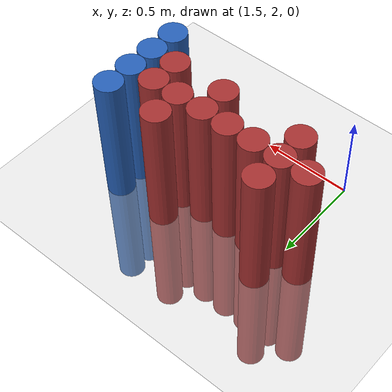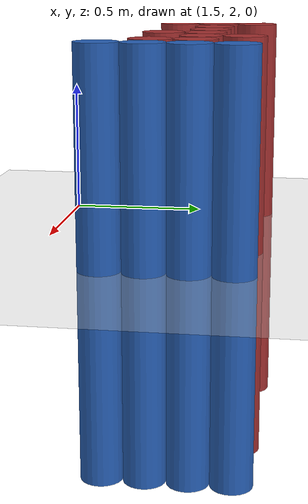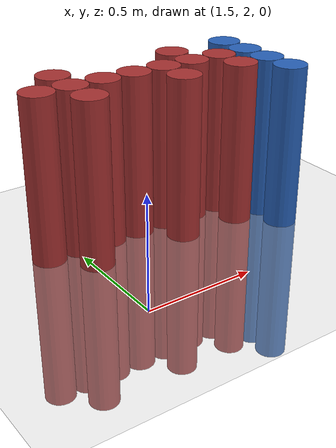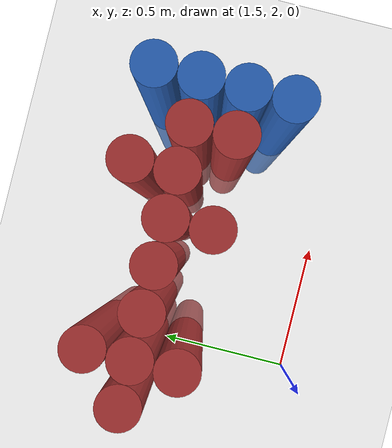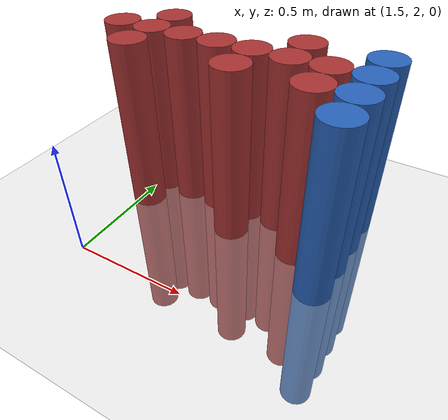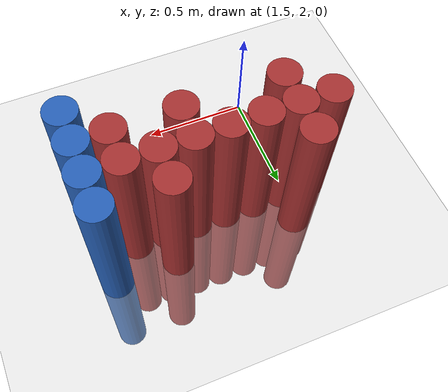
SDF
<sdf version="1.6">
 <world name="default">
  <model name="ground_plane">
   <static>1</static>
   <link name="link">
    <collision name="collision">
     <geometry><plane><normal>0 0 1</normal><size>100 100</size></plane></geometry>
     <surface><friction><ode><mu>100</mu><mu2>50</mu2></ode></friction></surface>
    </collision>
    <visual name="visual">
     <cast_shadows>0</cast_shadows>
     <geometry><plane><normal>0 0 1</normal><size>100 100</size></plane></geometry>
     <material>
      <script><uri>file://media/materials/scripts/gazebo.material</uri><name>Gazebo/Grey</name></script>
     </material>
    </visual>
   </link>
  </model>
  <model name="unit_cylinder_187">
   <static>1</static>
   <pose>1.375000 2.575000 0.000000 0.000000 0.000000 0.000000</pose>
   <link name="link">
    <inertial>
     <mass>1</mass>
     <inertia><ixx>0.145833</ixx><ixy>0</ixy><ixz>0</ixz><iyy>0.145833</iyy><iyz>0</iyz><izz>0.125</izz></inertia>
    </inertial>
    <collision name="collision">
     <geometry><cylinder><radius>0.075000</radius><length>1.5</length></cylinder></geometry>
    </collision>
    <visual name="visual">
     <geometry><cylinder><radius>0.075000</radius><length>1.5</length></cylinder></geometry>
     <material>
      <ambient>0.648000 0.192000 0.192000 1</ambient>
      <diffuse>0.648000 0.192000 0.192000 1</diffuse>
     </material>
     <material>
      <script><name>Gazebo/Grey</name><uri>file://media/materials/scripts/gazebo.material</uri></script>
     </material>
    </visual>
   </link>
  </model>
  <model name="unit_cylinder_191">
   <static>1</static>
   <pose>1.525000 2.425000 0.000000 0.000000 0.000000 0.000000</pose>
   <link name="link">
    <inertial>
     <mass>1</mass>
     <inertia><ixx>0.145833</ixx><ixy>0</ixy><ixz>0</ixz><iyy>0.145833</iyy><iyz>0</iyz><izz>0.125</izz></inertia>
    </inertial>
    <collision name="collision">
     <geometry><cylinder><radius>0.075000</radius><length>1.5</length></cylinder></geometry>
    </collision>
    <visual name="visual">
     <geometry><cylinder><radius>0.075000</radius><length>1.5</length></cylinder></geometry>
     <material>
      <ambient>0.648000 0.192000 0.192000 1</ambient>
      <diffuse>0.648000 0.192000 0.192000 1</diffuse>
     </material>
     <material>
      <script><name>Gazebo/Grey</name><uri>file://media/materials/scripts/gazebo.material</uri></script>
     </material>
    </visual>
   </link>
  </model>
  <model name="unit_cylinder_192">
   <static>1</static>
   <pose>1.525000 2.575000 0.000000 0.000000 0.000000 0.000000</pose>
   <link name="link">
    <inertial>
     <mass>1</mass>
     <inertia><ixx>0.145833</ixx><ixy>0</ixy><ixz>0</ixz><iyy>0.145833</iyy><iyz>0</iyz><izz>0.125</izz></inertia>
    </inertial>
    <collision name="collision">
     <geometry><cylinder><radius>0.075000</radius><length>1.5</length></cylinder></geometry>
    </collision>
    <visual name="visual">
     <geometry><cylinder><radius>0.075000</radius><length>1.5</length></cylinder></geometry>
     <material>
      <ambient>0.648000 0.192000 0.192000 1</ambient>
      <diffuse>0.648000 0.192000 0.192000 1</diffuse>
     </material>
     <material>
      <script><name>Gazebo/Grey</name><uri>file://media/materials/scripts/gazebo.material</uri></script>
     </material>
    </visual>
   </link>
  </model>
  <model name="unit_cylinder_193">
   <static>1</static>
   <pose>1.525000 2.725000 0.000000 0.000000 0.000000 0.000000</pose>
   <link name="link">
    <inertial>
     <mass>1</mass>
     <inertia><ixx>0.145833</ixx><ixy>0</ixy><ixz>0</ixz><iyy>0.145833</iyy><iyz>0</iyz><izz>0.125</izz></inertia>
    </inertial>
    <collision name="collision">
     <geometry><cylinder><radius>0.075000</radius><length>1.5</length></cylinder></geometry>
    </collision>
    <visual name="visual">
     <geometry><cylinder><radius>0.075000</radius><length>1.5</length></cylinder></geometry>
     <material>
      <ambient>0.648000 0.192000 0.192000 1</ambient>
      <diffuse>0.648000 0.192000 0.192000 1</diffuse>
     </material>
     <material>
      <script><name>Gazebo/Grey</name><uri>file://media/materials/scripts/gazebo.material</uri></script>
     </material>
    </visual>
   </link>
  </model>
  <model name="unit_cylinder_197">
   <static>1</static>
   <pose>1.675000 2.575000 0.000000 0.000000 0.000000 0.000000</pose>
   <link name="link">
    <inertial>
     <mass>1</mass>
     <inertia><ixx>0.145833</ixx><ixy>0</ixy><ixz>0</ixz><iyy>0.145833</iyy><iyz>0</iyz><izz>0.125</izz></inertia>
    </inertial>
    <collision name="collision">
     <geometry><cylinder><radius>0.075000</radius><length>1.5</length></cylinder></geometry>
    </collision>
    <visual name="visual">
     <geometry><cylinder><radius>0.075000</radius><length>1.5</length></cylinder></geometry>
     <material>
      <ambient>0.648000 0.192000 0.192000 1</ambient>
      <diffuse>0.648000 0.192000 0.192000 1</diffuse>
     </material>
     <material>
      <script><name>Gazebo/Grey</name><uri>file://media/materials/scripts/gazebo.material</uri></script>
     </material>
    </visual>
   </link>
  </model>
  <model name="unit_cylinder_202">
   <static>1</static>
   <pose>1.825000 2.575000 0.000000 0.000000 0.000000 0.000000</pose>
   <link name="link">
    <inertial>
     <mass>1</mass>
     <inertia><ixx>0.145833</ixx><ixy>0</ixy><ixz>0</ixz><iyy>0.145833</iyy><iyz>0</iyz><izz>0.125</izz></inertia>
    </inertial>
    <collision name="collision">
     <geometry><cylinder><radius>0.075000</radius><length>1.5</length></cylinder></geometry>
    </collision>
    <visual name="visual">
     <geometry><cylinder><radius>0.075000</radius><length>1.5</length></cylinder></geometry>
     <material>
      <ambient>0.648000 0.192000 0.192000 1</ambient>
      <diffuse>0.648000 0.192000 0.192000 1</diffuse>
     </material>
     <material>
      <script><name>Gazebo/Grey</name><uri>file://media/materials/scripts/gazebo.material</uri></script>
     </material>
    </visual>
   </link>
  </model>
  <model name="unit_cylinder_205">
   <static>1</static>
   <pose>1.975000 2.425000 0.000000 0.000000 0.000000 0.000000</pose>
   <link name="link">
    <inertial>
     <mass>1</mass>
     <inertia><ixx>0.145833</ixx><ixy>0</ixy><ixz>0</ixz><iyy>0.145833</iyy><iyz>0</iyz><izz>0.125</izz></inertia>
    </inertial>
    <collision name="collision">
     <geometry><cylinder><radius>0.075000</radius><length>1.5</length></cylinder></geometry>
    </collision>
    <visual name="visual">
     <geometry><cylinder><radius>0.075000</radius><length>1.5</length></cylinder></geometry>
     <material>
      <ambient>0.648000 0.192000 0.192000 1</ambient>
      <diffuse>0.648000 0.192000 0.192000 1</diffuse>
     </material>
     <material>
      <script><name>Gazebo/Grey</name><uri>file://media/materials/scripts/gazebo.material</uri></script>
     </material>
    </visual>
   </link>
  </model>
  <model name="unit_cylinder_206">
   <static>1</static>
   <pose>1.975000 2.575000 0.000000 0.000000 0.000000 0.000000</pose>
   <link name="link">
    <inertial>
     <mass>1</mass>
     <inertia><ixx>0.145833</ixx><ixy>0</ixy><ixz>0</ixz><iyy>0.145833</iyy><iyz>0</iyz><izz>0.125</izz></inertia>
    </inertial>
    <collision name="collision">
     <geometry><cylinder><radius>0.075000</radius><length>1.5</length></cylinder></geometry>
    </collision>
    <visual name="visual">
     <geometry><cylinder><radius>0.075000</radius><length>1.5</length></cylinder></geometry>
     <material>
      <ambient>0.648000 0.192000 0.192000 1</ambient>
      <diffuse>0.648000 0.192000 0.192000 1</diffuse>
     </material>
     <material>
      <script><name>Gazebo/Grey</name><uri>file://media/materials/scripts/gazebo.material</uri></script>
     </material>
    </visual>
   </link>
  </model>
  <model name="unit_cylinder_211">
   <static>1</static>
   <pose>2.125000 2.575000 0.000000 0.000000 0.000000 0.000000</pose>
   <link name="link">
    <inertial>
     <mass>1</mass>
     <inertia><ixx>0.145833</ixx><ixy>0</ixy><ixz>0</ixz><iyy>0.145833</iyy><iyz>0</iyz><izz>0.125</izz></inertia>
    </inertial>
    <collision name="collision">
     <geometry><cylinder><radius>0.075000</radius><length>1.5</length></cylinder></geometry>
    </collision>
    <visual name="visual">
     <geometry><cylinder><radius>0.075000</radius><length>1.5</length></cylinder></geometry>
     <material>
      <ambient>0.648000 0.192000 0.192000 1</ambient>
      <diffuse>0.648000 0.192000 0.192000 1</diffuse>
     </material>
     <material>
      <script><name>Gazebo/Grey</name><uri>file://media/materials/scripts/gazebo.material</uri></script>
     </material>
    </visual>
   </link>
  </model>
  <model name="unit_cylinder_212">
   <static>1</static>
   <pose>2.125000 2.725000 0.000000 0.000000 0.000000 0.000000</pose>
   <link name="link">
    <inertial>
     <mass>1</mass>
     <inertia><ixx>0.145833</ixx><ixy>0</ixy><ixz>0</ixz><iyy>0.145833</iyy><iyz>0</iyz><izz>0.125</izz></inertia>
    </inertial>
    <collision name="collision">
     <geometry><cylinder><radius>0.075000</radius><length>1.5</length></cylinder></geometry>
    </collision>
    <visual name="visual">
     <geometry><cylinder><radius>0.075000</radius><length>1.5</length></cylinder></geometry>
     <material>
      <ambient>0.648000 0.192000 0.192000 1</ambient>
      <diffuse>0.648000 0.192000 0.192000 1</diffuse>
     </material>
     <material>
      <script><name>Gazebo/Grey</name><uri>file://media/materials/scripts/gazebo.material</uri></script>
     </material>
    </visual>
   </link>
  </model>
  <model name="unit_cylinder_219">
   <static>1</static>
   <pose>2.275000 2.425000 0.000000 0.000000 0.000000 0.000000</pose>
   <link name="link">
    <inertial>
     <mass>1</mass>
     <inertia><ixx>0.145833</ixx><ixy>0</ixy><ixz>0</ixz><iyy>0.145833</iyy><iyz>0</iyz><izz>0.125</izz></inertia>
    </inertial>
    <collision name="collision">
     <geometry><cylinder><radius>0.075000</radius><length>1.5</length></cylinder></geometry>
    </collision>
    <visual name="visual">
     <geometry><cylinder><radius>0.075000</radius><length>1.5</length></cylinder></geometry>
     <material>
      <ambient>0.648000 0.192000 0.192000 1</ambient>
      <diffuse>0.648000 0.192000 0.192000 1</diffuse>
     </material>
     <material>
      <script><name>Gazebo/Grey</name><uri>file://media/materials/scripts/gazebo.material</uri></script>
     </material>
    </visual>
   </link>
  </model>
  <model name="unit_cylinder_220">
   <static>1</static>
   <pose>2.275000 2.575000 0.000000 0.000000 0.000000 0.000000</pose>
   <link name="link">
    <inertial>
     <mass>1</mass>
     <inertia><ixx>0.145833</ixx><ixy>0</ixy><ixz>0</ixz><iyy>0.145833</iyy><iyz>0</iyz><izz>0.125</izz></inertia>
    </inertial>
    <collision name="collision">
     <geometry><cylinder><radius>0.075000</radius><length>1.5</length></cylinder></geometry>
    </collision>
    <visual name="visual">
     <geometry><cylinder><radius>0.075000</radius><length>1.5</length></cylinder></geometry>
     <material>
      <ambient>0.648000 0.192000 0.192000 1</ambient>
      <diffuse>0.648000 0.192000 0.192000 1</diffuse>
     </material>
     <material>
      <script><name>Gazebo/Grey</name><uri>file://media/materials/scripts/gazebo.material</uri></script>
     </material>
    </visual>
   </link>
  </model>
  <model name="unit_cylinder_242">
   <static>1</static>
   <pose>2.425000 2.275000 0.000000 0.000000 0.000000 0.000000</pose>
   <link name="link">
    <inertial>
     <mass>1</mass>
     <inertia><ixx>0.145833</ixx><ixy>0</ixy><ixz>0</ixz><iyy>0.145833</iyy><iyz>0</iyz><izz>0.125</izz></inertia>
    </inertial>
    <collision name="collision">
     <geometry><cylinder><radius>0.075000</radius><length>1.5</length></cylinder></geometry>
    </collision>
    <visual name="visual">
     <geometry><cylinder><radius>0.075000</radius><length>1.5</length></cylinder></geometry>
     <material>
      <ambient>0.152000 0.379000 0.720000 1</ambient>
      <diffuse>0.152000 0.379000 0.720000 1</diffuse>
     </material>
     <material>
      <script><name>Gazebo/Grey</name><uri>file://media/materials/scripts/gazebo.material</uri></script>
     </material>
    </visual>
   </link>
  </model>
  <model name="unit_cylinder_243">
   <static>1</static>
   <pose>2.425000 2.425000 0.000000 0.000000 0.000000 0.000000</pose>
   <link name="link">
    <inertial>
     <mass>1</mass>
     <inertia><ixx>0.145833</ixx><ixy>0</ixy><ixz>0</ixz><iyy>0.145833</iyy><iyz>0</iyz><izz>0.125</izz></inertia>
    </inertial>
    <collision name="collision">
     <geometry><cylinder><radius>0.075000</radius><length>1.5</length></cylinder></geometry>
    </collision>
    <visual name="visual">
     <geometry><cylinder><radius>0.075000</radius><length>1.5</length></cylinder></geometry>
     <material>
      <ambient>0.152000 0.379000 0.720000 1</ambient>
      <diffuse>0.152000 0.379000 0.720000 1</diffuse>
     </material>
     <material>
      <script><name>Gazebo/Grey</name><uri>file://media/materials/scripts/gazebo.material</uri></script>
     </material>
    </visual>
   </link>
  </model>
  <model name="unit_cylinder_244">
   <static>1</static>
   <pose>2.425000 2.575000 0.000000 0.000000 0.000000 0.000000</pose>
   <link name="link">
    <inertial>
     <mass>1</mass>
     <inertia><ixx>0.145833</ixx><ixy>0</ixy><ixz>0</ixz><iyy>0.145833</iyy><iyz>0</iyz><izz>0.125</izz></inertia>
    </inertial>
    <collision name="collision">
     <geometry><cylinder><radius>0.075000</radius><length>1.5</length></cylinder></geometry>
    </collision>
    <visual name="visual">
     <geometry><cylinder><radius>0.075000</radius><length>1.5</length></cylinder></geometry>
     <material>
      <ambient>0.152000 0.379000 0.720000 1</ambient>
      <diffuse>0.152000 0.379000 0.720000 1</diffuse>
     </material>
     <material>
      <script><name>Gazebo/Grey</name><uri>file://media/materials/scripts/gazebo.material</uri></script>
     </material>
    </visual>
   </link>
  </model>
  <model name="unit_cylinder_245">
   <static>1</static>
   <pose>2.425000 2.725000 0.000000 0.000000 0.000000 0.000000</pose>
   <link name="link">
    <inertial>
     <mass>1</mass>
     <inertia><ixx>0.145833</ixx><ixy>0</ixy><ixz>0</ixz><iyy>0.145833</iyy><iyz>0</iyz><izz>0.125</izz></inertia>
    </inertial>
    <collision name="collision">
     <geometry><cylinder><radius>0.075000</radius><length>1.5</length></cylinder></geometry>
    </collision>
    <visual name="visual">
     <geometry><cylinder><radius>0.075000</radius><length>1.5</length></cylinder></geometry>
     <material>
      <ambient>0.152000 0.379000 0.720000 1</ambient>
      <diffuse>0.152000 0.379000 0.720000 1</diffuse>
     </material>
     <material>
      <script><name>Gazebo/Grey</name><uri>file://media/materials/scripts/gazebo.material</uri></script>
     </material>
    </visual>
   </link>
  </model>
 </world>
</sdf>
